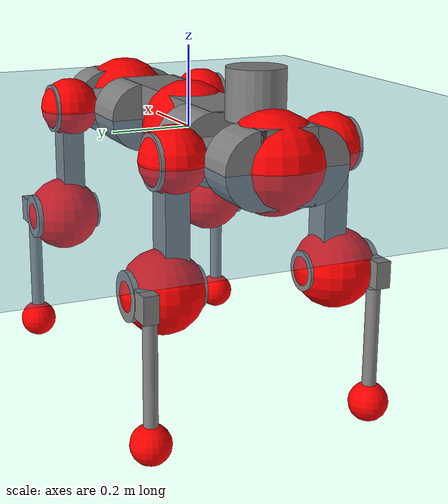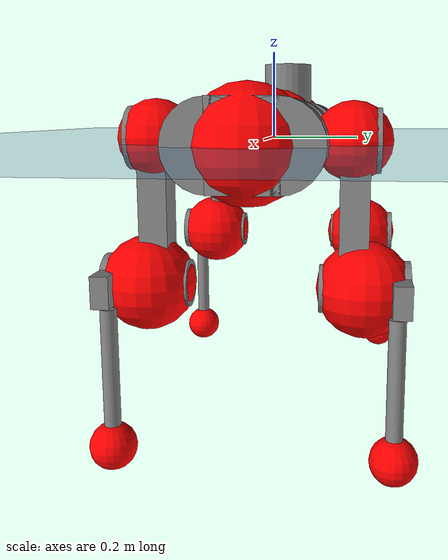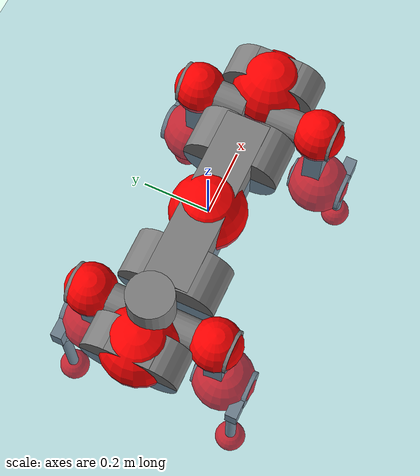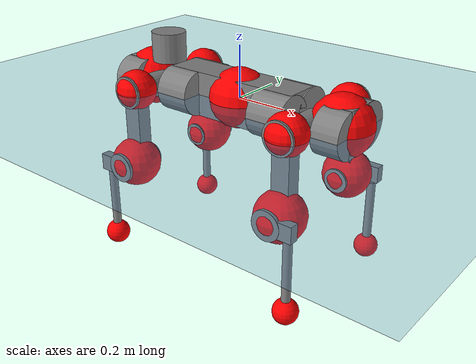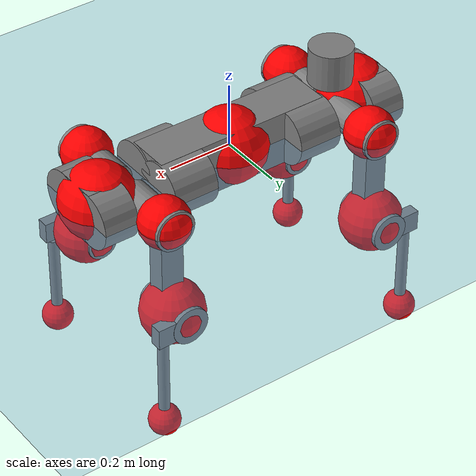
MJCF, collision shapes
<mujoco model="anymal_c">
  <compiler angle="radian" assetdir="assets" balanceinertia="true" inertiafromgeom="false"/>

  <option timestep="0.005" density="1.2" viscosity="2e-05"/>

  <size nkey="1"/>

  <visual>
    <quality shadowsize="8192"/>
    <map shadowclip="0.5"/>
  </visual>

  <default>
    <default class="/">
      <material specular="0" shininess="0.25"/>
      <geom contype="0" conaffinity="0" group="1" solref="-1000 -80"/>
      <site size="0.01 0.005 0.005" group="5"/>
      <general forcelimited="true" forcerange="-80 80" biastype="affine" gainprm="80" biasprm="0 -80 -2"/>
      <default class="anymal_c">
        <joint armature="0.01" damping="0.01" frictionloss="0.1"/>
        <default class="visual">
          <geom type="mesh" group="2"/>
          <default class="visual_zflip"/>
        </default>
        <default class="collision">
          <geom type="cylinder" group="3"/>
          <default class="foot">
            <geom size="0.03 0 0" type="sphere" condim="6" priority="1" friction="0.8 0.02 0.01" solimp="0.015 1 0.03"/>
          </default>
        </default>
      </default>
      <default class="reward_collision_sphere">
        <geom group="5" rgba="1 0 0 1"/>
      </default>
    </default>
  </default>

  <asset>
    <texture type="skybox" colorspace="auto" name="//unnamed_texture_0" builtin="gradient" rgb1="0.95 0.95 0.95" rgb2="0.95 0.95 0.95" width="100" height="600"/>
    <texture type="2d" colorspace="auto" name="texplane" builtin="checker" rgb1="0.345 0.575 0.748" rgb2="0.345 0.575 0.748" markrgb="1 1 1" width="512" height="512"/>
    <texture type="2d" colorspace="linear" name="base" file="base.png"/>
    <texture type="2d" colorspace="linear" name="top_shell" file="top_shell.png"/>
    <texture type="2d" colorspace="linear" name="bottom_shell" file="bottom_shell.png"/>
    <texture type="2d" colorspace="linear" name="remote" file="remote.png"/>
    <texture type="2d" colorspace="linear" name="hatch" file="hatch.png"/>
    <texture type="2d" colorspace="linear" name="handle" file="handle.png"/>
    <texture type="2d" colorspace="linear" name="face" file="face.png"/>
    <texture type="2d" colorspace="linear" name="battery" file="battery.png"/>
    <texture type="2d" colorspace="linear" name="lidar_cage" file="lidar_cage.png"/>
    <texture type="2d" colorspace="linear" name="depth_camera" file="depth_camera.png"/>
    <texture type="2d" colorspace="linear" name="wide_angle_camera" file="wide_angle_camera.png"/>
    <texture type="2d" colorspace="linear" name="lidar" file="lidar.png"/>
    <texture type="2d" colorspace="linear" name="drive" file="drive.png"/>
    <texture type="2d" colorspace="linear" name="hip_l" file="hip_l.png"/>
    <texture type="2d" colorspace="linear" name="shank_l" file="shank_l.png"/>
    <texture type="2d" colorspace="linear" name="foot" file="foot.png"/>
    <texture type="2d" colorspace="linear" name="thigh" file="thigh.png"/>
    <texture type="2d" colorspace="linear" name="shank_r" file="shank_r.png"/>
    <texture type="2d" colorspace="linear" name="hip_r" file="hip_r.png"/>
    <material name="MatPlane" class="/" texture="texplane" texuniform="true" texrepeat="2 2" specular="0.9" shininess="0.5"/>
    <material name="black_plastic" class="/" rgba="0.007 0.007 0.007 1"/>
    <material name="green" class="/" rgba="0.052 0.178 0.033 1"/>
    <material name="red" class="/" rgba="0.178 0.006 0.005 1"/>
    <material name="yellow" class="/" rgba="0.178 0.119 0.006 1"/>
    <material name="lwl" class="/" rgba="0.8 0.8 0.8 1"/>
    <material name="base" class="/" texture="base"/>
    <material name="top_shell" class="/" texture="top_shell"/>
    <material name="bottom_shell" class="/" texture="bottom_shell"/>
    <material name="hip_l" class="/" texture="hip_l"/>
    <material name="thigh" class="/" texture="thigh"/>
    <material name="shank_l" class="/" texture="shank_l"/>
    <material name="foot" class="/" texture="foot"/>
    <material name="hip_r" class="/" texture="hip_r"/>
    <material name="shank" class="/" texture="shank_r"/>
    <material name="hatch" class="/" texture="hatch"/>
    <material name="remote" class="/" texture="remote"/>
    <material name="handle" class="/" texture="handle"/>
    <material name="face" class="/" texture="face"/>
    <material name="depth_camera" class="/" texture="depth_camera"/>
    <material name="wide_angle_camera" class="/" texture="wide_angle_camera"/>
    <material name="battery" class="/" texture="battery"/>
    <material name="lidar_cage" class="/" texture="lidar_cage"/>
    <material name="lidar" class="/" texture="lidar"/>
    <material name="drive" class="/" texture="drive"/>
    <mesh name="base_0" class="/" file="base_0.obj"/>
    <mesh name="base_1" class="/" file="base_1.obj"/>
    <mesh name="base_2" class="/" file="base_2.obj"/>
    <mesh name="base_3" class="/" file="base_3.obj"/>
    <mesh name="base_4" class="/" file="base_4.obj"/>
    <mesh name="base_5" class="/" file="base_5.obj"/>
    <mesh name="top_shell" class="/" file="top_shell.obj"/>
    <mesh name="bottom_shell" class="/" file="bottom_shell.obj"/>
    <mesh name="remote" class="/" file="remote.obj"/>
    <mesh name="handle" class="/" file="handle.obj"/>
    <mesh name="face" class="/" file="face.obj"/>
    <mesh name="wide_angle_camera" class="/" file="wide_angle_camera.obj"/>
    <mesh name="depth_camera" class="/" file="depth_camera.obj"/>
    <mesh name="battery" class="/" file="battery.obj"/>
    <mesh name="lidar_cage" class="/" file="lidar_cage.obj"/>
    <mesh name="lidar" class="/" file="lidar.obj"/>
    <mesh name="drive" class="/" file="drive.obj"/>
    <mesh name="hip_l" class="/" file="hip_l.obj"/>
    <mesh name="thigh" class="/" file="thigh.obj"/>
    <mesh name="shank_l" class="/" file="shank_l.obj"/>
    <mesh name="foot" class="/" file="foot.obj"/>
    <mesh name="hip_r" class="/" file="hip_r.obj"/>
    <mesh name="hatch" class="/" file="hatch.obj"/>
    <mesh name="shank_r" class="/" file="shank_r.obj"/>
  </asset>

  <worldbody>
    <geom name="floor" class="/" size="100 100 0.125" type="plane" group="0" material="MatPlane"/>
    <light name="toplight_shadow" class="/" pos="0 0 5" dir="0.0990148 0.0990148 -0.990148" type="directional" ambient="0.04 0.04 0.04" diffuse="0.55 0.55 0.55" specular="0.12 0.12 0.12"/>
    <light name="toplight_fill" class="/" pos="0 0 5" dir="0.0990148 0.0990148 -0.990148" type="directional" castshadow="false" ambient="0.04 0.04 0.04" diffuse="0.3 0.3 0.3" specular="0.08 0.08 0.08"/>
    <body name="trunk" childclass="anymal_c" pos="-0.000355191 0.000385809 0.000764768" quat="1 -5.74346e-05 2.92909e-05 -2.18639e-05">
      <inertial pos="0.00291261 -0.000720256 0.0502067" quat="0.503697 0.497425 0.497162 0.501684" mass="16.8652" diaginertia="0.601627 0.315322 0.248821"/>
      <joint name="//unnamed_joint_0" type="free" armature="0" damping="0" frictionloss="0"/>
      <geom name="//unnamed_geom_1" class="visual" material="green" mesh="base_0"/>
      <geom name="//unnamed_geom_2" class="visual" material="yellow" mesh="base_1"/>
      <geom name="//unnamed_geom_3" class="visual" material="red" mesh="base_2"/>
      <geom name="//unnamed_geom_4" class="visual" material="black_plastic" mesh="base_3"/>
      <geom name="//unnamed_geom_5" class="visual" material="lwl" mesh="base_4"/>
      <geom name="//unnamed_geom_6" class="visual" material="base" mesh="base_5"/>
      <geom name="trunk_1" class="collision" size="0.277678 0.0670258 0.086176" type="box"/>
      <geom name="trunk_2" class="collision" size="0.086176 0.0694196" pos="0.21357 0.0608802 0" quat="0.707107 0 0.707107 0"/>
      <geom name="trunk_3" class="collision" size="0.086176 0.0694196" pos="-0.21357 0.0608802 0" quat="0.707107 0 0.707107 0"/>
      <geom name="trunk_4" class="collision" size="0.086176 0.0694196" pos="0.21357 -0.0608802 0" quat="0.707107 0 0.707107 0"/>
      <geom name="trunk_5" class="collision" size="0.086176 0.0694196" pos="-0.21357 -0.0608802 0" quat="0.707107 0 0.707107 0"/>
      <geom name="//unnamed_geom_12" class="visual" material="top_shell" mesh="top_shell"/>
      <geom name="//unnamed_geom_13" class="visual" material="bottom_shell" mesh="bottom_shell"/>
      <geom name="//unnamed_geom_14" class="visual" material="remote" mesh="remote"/>
      <geom name="//unnamed_geom_15" class="visual" material="handle" mesh="handle"/>
      <geom name="//unnamed_geom_16" class="visual" pos="0.40701 0 0" quat="1 0 0 0" material="face" mesh="face"/>
      <geom name="trunk_6" class="collision" size="0.0526631 0.0670258 0.086176" pos="0.461016 0 0" type="box"/>
      <geom name="//unnamed_geom_18" class="collision" size="0.086176 0.0526631" pos="0.461016 0.0608802 0" quat="0.707107 0 0.707107 0"/>
      <geom name="//unnamed_geom_19" class="collision" size="0.086176 0.0526631" pos="0.461016 -0.0608802 0" quat="0.707107 0 0.707107 0"/>
      <geom name="//unnamed_geom_20" class="visual" pos="0.45331 0 -0.030106" quat="0.965926 0 0.258819 0" material="depth_camera" mesh="depth_camera"/>
      <geom name="//unnamed_geom_21" class="visual" pos="0.50373 0 0.0152827" material="wide_angle_camera" mesh="wide_angle_camera"/>
      <geom name="//unnamed_geom_22" class="visual_zflip" pos="-0.40701 0 0" quat="0 0 0 1" material="face" mesh="face"/>
      <geom name="trunk_7" class="collision" size="0.0526631 0.0670258 0.086176" pos="-0.461016 0 0" quat="0 0 0 1" type="box"/>
      <geom name="//unnamed_geom_24" class="collision" size="0.086176 0.0526631" pos="-0.461016 -0.0608802 0" quat="0 -0.707107 0 0.707107"/>
      <geom name="//unnamed_geom_25" class="collision" size="0.086176 0.0526631" pos="-0.461016 0.0608802 0" quat="0 -0.707107 0 0.707107"/>
      <geom name="//unnamed_geom_26" class="visual" pos="-0.45331 0 -0.030106" quat="0 -0.258819 0 0.965926" material="depth_camera" mesh="depth_camera"/>
      <geom name="//unnamed_geom_27" class="visual_zflip" pos="-0.50373 0 0.0152827" quat="0 0 0 1" material="wide_angle_camera" mesh="wide_angle_camera"/>
      <geom name="//unnamed_geom_28" class="visual" material="battery" mesh="battery"/>
      <geom name="//unnamed_geom_29" class="visual" pos="0 0.0650277 0.0293607" quat="0.683013 -0.183013 0.183013 0.683013" material="depth_camera" mesh="depth_camera"/>
      <geom name="//unnamed_geom_30" class="visual" pos="0 -0.0650277 0.0293607" quat="0.683013 0.183013 0.183013 -0.683013" material="depth_camera" mesh="depth_camera"/>
      <geom name="//unnamed_geom_31" class="visual" pos="-0.357423 0 0.0750353" quat="1 0 0 0" material="lidar_cage" mesh="lidar_cage"/>
      <geom name="trunk_8" class="collision" size="0.0670258 0.0574507" pos="-0.357423 0 0.136289"/>
      <geom name="//unnamed_geom_33" class="visual" pos="-0.357423 -4.40856e-05 0.14517" quat="0.707107 0 0 -0.707107" material="lidar" mesh="lidar"/>
      <geom name="//unnamed_geom_34" class="visual" pos="0.294481 0.0905042 -2.60772e-09" quat="0.258819 0.965926 0 0" material="drive" mesh="drive"/>
      <geom name="//unnamed_geom_35" class="visual" pos="0.294481 -0.0905042 2.60772e-09" quat="0.258819 -0.965926 0 0" material="drive" mesh="drive"/>
      <geom name="//unnamed_geom_36" class="visual" pos="-0.294481 0.0905042 2.60772e-09" quat="0 0 0.965926 -0.258819" material="drive" mesh="drive"/>
      <geom name="//unnamed_geom_37" class="visual" pos="-0.294481 -0.0905042 -2.60772e-09" quat="0 0 -0.965926 -0.258819" material="drive" mesh="drive"/>
      <geom name="//unnamed_geom_38" class="visual" pos="0.113904 0 0.0745248" quat="1 0 0 0" material="hatch" mesh="hatch"/>
      <geom name="//unnamed_geom_39" class="reward_collision_sphere" size="0.114901"/>
      <geom name="//unnamed_geom_40" class="reward_collision_sphere" size="0.114901" pos="0.441869 0 0"/>
      <geom name="//unnamed_geom_41" class="reward_collision_sphere" size="0.114901" pos="-0.441869 0 0"/>
      <site name="imu" pos="0.241541 -0.00412833 0.0522313" size="0.00957512"/>
      <camera name="track" pos="0 -1.73943 0" quat="0.707107 0.707107 0 0" mode="trackcom"/>
      <camera name="ego_camera" pos="0.441869 0 -0.0408355" quat="-0.5 -0.5 0.5 0.5"/>
      <body name="LF_HIP" pos="0.294639 0.0903995 0.000625265" quat="0.259677 0.965695 0.00064403 0.00027635">
        <inertial pos="0.0564346 -0.0125772 -0.00767848" quat="-0.126283 0.70916 -0.134366 0.680507" mass="2.49639" diaginertia="0.00546351 0.00251027 0.00369902"/>
        <joint name="LF_HAA" pos="0 0 0" axis="1 0.000376595 -0.000758315" range="-0.684264 0.484902" armature="0.00989697" damping="0.0129104" frictionloss="0.094272"/>
        <geom name="//unnamed_geom_42" class="visual" pos="0 -0.0001534 2.51959e-05" quat="0.258819 -0.965926 0 0" material="hip_l" mesh="hip_l"/>
        <geom name="//unnamed_geom_43" class="visual" pos="0.0588176 -0.0698463 -0.0414439" quat="0.183013 -0.683013 0.683013 0.183013" material="drive" mesh="drive"/>
        <geom name="//unnamed_geom_44" class="collision" size="0.0478756 0.0670258" pos="0.0588176 -0.0104016 -0.00704923" quat="-0.353553 -0.612372 0.612372 -0.353553"/>
        <body name="LF_THIGH" pos="0.0591346 -0.0637484 -0.0412543" quat="0.183006 -0.682969 0.683037 0.183093">
          <inertial pos="0.0306629 -0.00170532 -0.25305" quat="0.993451 -0.00561295 -0.0809859 0.0804069" mass="2.69539" diaginertia="0.0276995 0.015002 0.00464398"/>
          <joint name="LF_HFE" pos="0 0 0" axis="1 0.000213246 -0.000222586" range="-3.14705 3.18121" armature="0.00987481" damping="0" frictionloss="0.0954861"/>
          <geom name="//unnamed_geom_45" class="visual" pos="0.00223261 3.51806e-06 0" quat="0.707107 0 0 -0.707107" material="thigh" mesh="thigh"/>
          <geom name="//unnamed_geom_46" class="collision" size="0.0622383 0.0383005" pos="0.0392772 0 0" quat="0.5 0.5 -0.5 -0.5"/>
          <geom name="//unnamed_geom_47" class="collision" size="0.0359067 0.0287253 0.13531" pos="0.0294579 0 -0.144266" quat="0.707107 0 0 -0.707107" type="box"/>
          <geom name="//unnamed_geom_48" class="visual" pos="0.0984876 0 -0.290953" quat="1 0 0 0" material="drive" mesh="drive"/>
          <geom name="//unnamed_geom_49" class="collision" size="0.0478756 0.0670258" pos="0.0297525 0 -0.290953" quat="0.707107 0 0.707107 0"/>
          <geom name="//unnamed_geom_50" class="reward_collision_sphere" size="0.0766009" pos="0.0245483 0 0"/>
          <body name="LF_SHANK" pos="0.100766 0.00161329 -0.290565" quat="1 2.67473e-05 5.48951e-05 -3.70973e-05">
            <inertial pos="0.00603253 -0.0526877 -0.0822341" quat="0.99296 -0.115756 -0.000708274 -0.0250968" mass="0.525655" diaginertia="0.00926251 0.00459843 0.00123676"/>
            <joint name="LF_KFE" pos="0 0 0" axis="0.999998 -0.000668811 -0.00165291" range="-3.13989 3.10968" armature="0.00946748" damping="0.00945502" frictionloss="0.093366"/>
            <geom name="//unnamed_geom_51" class="visual" pos="0.000728004 0.00388175 0" quat="0.707107 0 0 -0.707107" material="shank_l" mesh="shank_l"/>
            <geom name="LF_kfe_act" class="collision" size="0.0574507 0.0191502" pos="0.0196386 0 0" quat="0.5 0.5 -0.5 -0.5"/>
            <geom name="//unnamed_geom_53" class="collision" size="0.055056 0.032316 0.0181927" pos="0.0196386 -0.0500078 0" quat="0.5 0.5 -0.5 -0.5" type="box"/>
            <geom name="//unnamed_geom_54" class="visual" pos="0.012814 -0.0752407 -0.34503" quat="0.382683 0 0 -0.92388" material="foot" mesh="foot"/>
            <geom name="LF_calf" class="collision" size="0.0167565 0.13525" pos="0.0128142 -0.0764916 -0.172515" quat="0.707107 0 0 -0.707107"/>
            <geom name="LF_foot" class="foot" size="0.0276243" pos="0.0128142 -0.0764916 -0.32206" quat="0.707107 0 0 -0.707107"/>
            <geom name="//unnamed_geom_57" class="reward_collision_sphere" size="0.0957512" pos="-0.0490965 0 0"/>
            <geom name="//unnamed_geom_58" class="reward_collision_sphere" size="0.0478756" pos="0.0128142 -0.0764916 -0.32206"/>
            <site name="LF_foot" class="foot" pos="0.0128142 -0.0764916 -0.32206" quat="0.707107 0 0 -0.707107" size="0.00957512"/>
          </body>
        </body>
      </body>
      <body name="RF_HIP" pos="0.294373 -0.0918975 0.00201024" quat="0.258849 -0.965918 6.78177e-06 -2.76529e-05">
        <inertial pos="0.0563121 0.0137203 -0.0088772" quat="0.140259 0.674081 0.124579 0.714438" mass="2.49474" diaginertia="0.00552587 0.00247641 0.00373952"/>
        <joint name="RF_HAA" pos="0 0 0" axis="0.999999 -0.00137188 0.000254264" range="-0.483633 0.725465" armature="0.00957387" damping="0.0104832" frictionloss="0.0912007"/>
        <geom name="//unnamed_geom_59" class="visual" pos="0 0.000153399 2.51958e-05" quat="0.258819 0.965926 0 0" material="hip_r" mesh="hip_r"/>
        <geom name="//unnamed_geom_60" class="visual" pos="0.0588176 0.0698463 -0.0414439" quat="0.183013 0.683013 0.683013 -0.183013" material="drive" mesh="drive"/>
        <geom name="//unnamed_geom_61" class="collision" size="0.0478756 0.0670258" pos="0.0588176 0.0104016 -0.00704923" quat="-0.353553 0.612372 0.612372 0.353553"/>
        <body name="RF_THIGH" pos="0.0583529 0.0628852 -0.0439205" quat="0.182897 0.683058 0.683045 -0.182841">
          <inertial pos="0.0304067 2.72628e-05 -0.252546" quat="0.992525 -0.0166451 -0.0821006 0.0887516" mass="2.73029" diaginertia="0.0285128 0.0152338 0.00475029"/>
          <joint name="RF_HFE" pos="0 0 0" axis="0.999997 0.000464517 0.0021996" stiffness="0.00472041" range="-3.1806 3.15806" armature="0.0091714" damping="0.00947024" frictionloss="0.0943231"/>
          <geom name="//unnamed_geom_62" class="visual" pos="0.00223261 3.51806e-06 0" quat="0.707107 0 0 -0.707107" material="thigh" mesh="thigh"/>
          <geom name="//unnamed_geom_63" class="collision" size="0.0622383 0.0383005" pos="0.0392772 0 0" quat="0.5 0.5 0.5 0.5"/>
          <geom name="//unnamed_geom_64" class="collision" size="0.0359067 0.0287253 0.13531" pos="0.0294579 0 -0.144266" quat="0.707107 0 0 0.707107" type="box"/>
          <geom name="//unnamed_geom_65" class="visual" pos="0.0984876 0 -0.290953" quat="1 0 0 0" material="drive" mesh="drive"/>
          <geom name="//unnamed_geom_66" class="collision" size="0.0478756 0.0670258" pos="0.0297525 0 -0.290953" quat="0.707107 0 0.707107 0"/>
          <geom name="//unnamed_geom_67" class="reward_collision_sphere" size="0.0766009" pos="0.0245483 0 0"/>
          <body name="RF_SHANK" pos="0.0982594 0.000853663 -0.291076" quat="1 -1.64024e-05 -5.85302e-09 -9.3882e-07">
            <inertial pos="0.00532747 0.0531965 -0.0798269" quat="0.992709 0.117185 -0.00110231 0.0282194" mass="0.496732" diaginertia="0.00889456 0.00458815 0.00117983"/>
            <joint name="RF_KFE" pos="0 0 0" axis="0.999999 -7.31833e-05 0.00140078" range="-3.1241 3.14978" armature="0.00982873" damping="0.00830194" frictionloss="0.0954311"/>
            <geom name="//unnamed_geom_68" class="visual" pos="0.000728 -0.00388175 0" quat="0.707107 0 0 0.707107" material="shank" mesh="shank_r"/>
            <geom name="RF_kfe_act" class="collision" size="0.0574507 0.0191502" pos="0.0196386 0 0" quat="0.5 0.5 0.5 0.5"/>
            <geom name="//unnamed_geom_70" class="collision" size="0.055056 0.032316 0.0181927" pos="0.0196386 0.0500078 0" quat="0.5 0.5 0.5 0.5" type="box"/>
            <geom name="//unnamed_geom_71" class="visual" pos="0.0128144 0.0752407 -0.34503" quat="0.382683 0 0 0.92388" material="foot" mesh="foot"/>
            <geom name="RF_calf" class="collision" size="0.0167565 0.13525" pos="0.0128142 0.0764916 -0.172515" quat="0.707107 0 0 0.707107"/>
            <geom name="RF_foot" class="foot" size="0.0282781" pos="0.0128142 0.0764916 -0.32206" quat="0.707107 0 0 0.707107"/>
            <geom name="//unnamed_geom_74" class="reward_collision_sphere" size="0.0957512" pos="-0.0490965 0 0"/>
            <geom name="//unnamed_geom_75" class="reward_collision_sphere" size="0.0478756" pos="0.0128142 0.0764916 -0.32206"/>
            <site name="RF_foot" class="foot" pos="0.0128142 0.0764916 -0.32206" quat="0.707107 0 0 0.707107" size="0.00957512"/>
          </body>
        </body>
      </body>
      <body name="LH_HIP" pos="-0.2944 0.0914967 -0.00111796" quat="0.000293946 0.000137994 0.965919 -0.258844">
        <inertial pos="0.0555424 0.0125708 -0.0102259" quat="0.137196 0.678923 0.128981 0.709651" mass="2.47699" diaginertia="0.00540571 0.00243016 0.00364673"/>
        <joint name="LH_HAA" pos="0 0 0" axis="0.999999 -0.00137287 0.000748993" stiffness="0.000967573" range="-0.450479 0.756517" armature="0.00950532" damping="0.00982825" frictionloss="0.10368"/>
        <geom name="//unnamed_geom_76" class="visual" pos="0 0.000153399 2.51958e-05" quat="-0.258819 -0.965926 0 0" material="hip_r" mesh="hip_r"/>
        <geom name="//unnamed_geom_77" class="visual" pos="0.0588176 0.0698463 -0.0414439" quat="0.183013 0.683013 0.683013 -0.183013" material="drive" mesh="drive"/>
        <geom name="//unnamed_geom_78" class="collision" size="0.0478756 0.0670258" pos="0.0588176 0.0104016 -0.00704923" quat="-0.353553 0.612372 0.612372 0.353553"/>
        <body name="LH_THIGH" pos="0.0581587 0.0633966 -0.0431171" quat="0.182939 0.683039 0.683027 -0.182932">
          <inertial pos="0.0288153 0.000278636 -0.252862" quat="0.991899 -0.00429246 -0.0827779 0.0962602" mass="2.6602" diaginertia="0.0266168 0.0146467 0.00448348"/>
          <joint name="LH_HFE" pos="0 0 0" axis="0.99996 -0.00891333 -0.000493911" stiffness="0.00164646" range="-3.17532 3.14381" armature="0.00910934" damping="0.00361833" frictionloss="0.0973553"/>
          <geom name="//unnamed_geom_79" class="visual" pos="0.00223261 3.51806e-06 0" quat="0.707107 0 0 -0.707107" material="thigh" mesh="thigh"/>
          <geom name="//unnamed_geom_80" class="collision" size="0.0622383 0.0383005" pos="0.0392772 0 0" quat="0.5 0.5 -0.5 -0.5"/>
          <geom name="//unnamed_geom_81" class="collision" size="0.0359067 0.0287253 0.13531" pos="0.0294579 0 -0.144266" quat="0.707107 0 0 -0.707107" type="box"/>
          <geom name="//unnamed_geom_82" class="visual" pos="0.0984876 0 -0.290953" quat="1 0 0 0" material="drive" mesh="drive"/>
          <geom name="//unnamed_geom_83" class="collision" size="0.0478756 0.0670258" pos="0.0297525 0 -0.290953" quat="0.707107 0 0.707107 0"/>
          <geom name="//unnamed_geom_84" class="reward_collision_sphere" size="0.0766009" pos="0.0245483 0 0"/>
          <body name="LH_SHANK" pos="0.0988494 -0.0015481 -0.291994" quat="1 -0.000336688 -2.72323e-05 -0.000284979">
            <inertial pos="0.00485715 0.0534575 -0.0823021" quat="0.993416 0.11191 -0.00327273 0.0242753" mass="0.514101" diaginertia="0.00927877 0.00455045 0.00125942"/>
            <joint name="LH_KFE" pos="0 0 0" axis="0.999999 -0.00115519 -0.000364169" range="-3.16159 3.13941" armature="0.00990509" damping="0.0101364" frictionloss="0.0937803"/>
            <geom name="//unnamed_geom_85" class="visual" pos="0.000728 -0.00388175 0" quat="-0.707107 0 0 -0.707107" material="shank" mesh="shank_r"/>
            <geom name="LH_kfe_act" class="collision" size="0.0574507 0.0191502" pos="0.0196386 0 0" quat="0.5 0.5 -0.5 -0.5"/>
            <geom name="//unnamed_geom_87" class="collision" size="0.055056 0.032316 0.0181927" pos="0.0196386 0.0500078 0" quat="0.5 0.5 -0.5 -0.5" type="box"/>
            <geom name="//unnamed_geom_88" class="visual" pos="0.0128144 0.0752407 -0.34503" quat="-0.382683 0 0 -0.92388" material="foot" mesh="foot"/>
            <geom name="LH_calf" class="collision" size="0.0167565 0.13525" pos="0.0128142 0.0764916 -0.172515" quat="0.707107 0 0 -0.707107"/>
            <geom name="LH_foot" class="foot" size="0.031309" pos="0.0128142 0.0764916 -0.32206" quat="0.707107 0 0 -0.707107"/>
            <geom name="//unnamed_geom_91" class="reward_collision_sphere" size="0.0957512" pos="-0.0490965 0 0"/>
            <geom name="//unnamed_geom_92" class="reward_collision_sphere" size="0.0478756" pos="0.0128142 0.0764916 -0.32206"/>
            <site name="LH_foot" class="foot" pos="0.0128142 0.0764916 -0.32206" quat="0.707107 0 0 -0.707107" size="0.00957512"/>
          </body>
        </body>
      </body>
      <body name="RH_HIP" pos="-0.294412 -0.0890276 0.000235811" quat="0.000147864 0.000293477 -0.965808 -0.259259">
        <inertial pos="0.0553249 -0.0118699 -0.00907892" quat="-0.127985 0.709782 -0.135273 0.67936" mass="2.34679" diaginertia="0.0051916 0.0023828 0.00355022"/>
        <joint name="RH_HAA" pos="0 0 0" axis="0.999989 0.001083 0.00464967" stiffness="3.11462e-06" range="-0.741965 0.473156" armature="0.00983609" damping="0.00287723" frictionloss="0.0910213"/>
        <geom name="//unnamed_geom_93" class="visual" pos="0 -0.0001534 2.51959e-05" quat="-0.258819 0.965926 0 0" material="hip_l" mesh="hip_l"/>
        <geom name="//unnamed_geom_94" class="visual" pos="0.0588176 -0.0698463 -0.0414439" quat="-0.183013 0.683013 -0.683013 -0.183013" material="drive" mesh="drive"/>
        <geom name="//unnamed_geom_95" class="collision" size="0.0478756 0.0670258" pos="0.0588176 -0.0104016 -0.00704923" quat="0.353553 0.612372 -0.612372 0.353553"/>
        <body name="RH_THIGH" pos="0.0584614 -0.0627205 -0.0411338" quat="-0.182999 0.683055 -0.682982 -0.182982">
          <inertial pos="0.0308278 0.000265777 -0.250648" quat="0.9932 -0.00463725 -0.080778 0.0837126" mass="2.62372" diaginertia="0.0269232 0.0145743 0.00463443"/>
          <joint name="RH_HFE" pos="0 0 0" axis="0.999978 -0.000627475 0.0065719" range="-3.17819 3.17759" armature="0.00945657" damping="0.00696299" frictionloss="0.0903687"/>
          <geom name="//unnamed_geom_96" class="visual" pos="0.00223261 3.51806e-06 0" quat="0.707107 0 0 -0.707107" material="thigh" mesh="thigh"/>
          <geom name="//unnamed_geom_97" class="collision" size="0.0622383 0.0383005" pos="0.0392772 0 0" quat="0.5 0.5 0.5 0.5"/>
          <geom name="//unnamed_geom_98" class="collision" size="0.0359067 0.0287253 0.13531" pos="0.0294579 0 -0.144266" quat="0.707107 0 0 0.707107" type="box"/>
          <geom name="//unnamed_geom_99" class="visual" pos="0.0984876 0 -0.290953" quat="1 0 0 0" material="drive" mesh="drive"/>
          <geom name="//unnamed_geom_100" class="collision" size="0.0478756 0.0670258" pos="0.0297525 0 -0.290953" quat="0.707107 0 0.707107 0"/>
          <geom name="//unnamed_geom_101" class="reward_collision_sphere" size="0.0766009" pos="0.0245483 0 0"/>
          <body name="RH_SHANK" pos="0.0998572 1.3265e-05 -0.291281" quat="1 1.46186e-05 -1.03805e-05 -7.13723e-05">
            <inertial pos="0.00446136 -0.0532337 -0.0826136" quat="0.992817 -0.116613 -0.000481887 -0.0267468" mass="0.512049" diaginertia="0.00929393 0.00456381 0.00124495"/>
            <joint name="RH_KFE" pos="0 0 0" axis="0.999955 -0.00156646 0.00934121" range="-3.12735 3.12701" armature="0.00996241" damping="0" frictionloss="0.0973418"/>
            <geom name="//unnamed_geom_102" class="visual" pos="0.000728004 0.00388175 0" quat="0.707107 0 0 -0.707107" material="shank_l" mesh="shank_l"/>
            <geom name="RH_kfe_act" class="collision" size="0.0574507 0.0191502" pos="0.0196386 0 0" quat="0.5 0.5 0.5 0.5"/>
            <geom name="//unnamed_geom_104" class="collision" size="0.055056 0.032316 0.0181927" pos="0.0196386 -0.0500078 0" quat="0.5 0.5 0.5 0.5" type="box"/>
            <geom name="//unnamed_geom_105" class="visual" pos="0.012814 -0.0752407 -0.34503" quat="0.382683 0 0 -0.92388" material="foot" mesh="foot"/>
            <geom name="RH_calf" class="collision" size="0.0167565 0.13525" pos="0.0128142 -0.0764916 -0.172515" quat="0.707107 0 0 0.707107"/>
            <geom name="RH_foot" class="foot" size="0.0295662" pos="0.0128142 -0.0764916 -0.32206" quat="0.707107 0 0 0.707107"/>
            <geom name="//unnamed_geom_108" class="reward_collision_sphere" size="0.0957512" pos="-0.0490965 0 0"/>
            <geom name="//unnamed_geom_109" class="reward_collision_sphere" size="0.0478756" pos="0.0128142 -0.0764916 -0.32206"/>
            <site name="RH_foot" class="foot" pos="0.0128142 -0.0764916 -0.32206" quat="0.707107 0 0 0.707107" size="0.00957512"/>
          </body>
        </body>
      </body>
    </body>
  </worldbody>

  <contact>
    <pair class="/" geom1="floor" geom2="LF_foot" name="//unnamed_contact_0"/>
    <pair class="/" geom1="floor" geom2="RF_foot" name="//unnamed_contact_1"/>
    <pair class="/" geom1="floor" geom2="LH_foot" name="//unnamed_contact_2"/>
    <pair class="/" geom1="floor" geom2="RH_foot" name="//unnamed_contact_3"/>
  </contact>

  <actuator>
    <general name="LF_HAA" class="/" joint="LF_HAA" forcerange="-75.4389 75.4389" gainprm="78.3481" biasprm="0 -78.3481 -2.00548"/>
    <general name="LF_HFE" class="/" joint="LF_HFE" forcerange="-80.795 80.795" gainprm="78.3481" biasprm="0 -78.3481 -2.00548"/>
    <general name="LF_KFE" class="/" joint="LF_KFE" forcerange="-72.6685 72.6685" gainprm="78.3481" biasprm="0 -78.3481 -2.00548"/>
    <general name="RF_HAA" class="/" joint="RF_HAA" forcerange="-78.9009 78.9009" gainprm="78.3481" biasprm="0 -78.3481 -2.00548"/>
    <general name="RF_HFE" class="/" joint="RF_HFE" forcerange="-77.9893 77.9893" gainprm="78.3481" biasprm="0 -78.3481 -2.00548"/>
    <general name="RF_KFE" class="/" joint="RF_KFE" forcerange="-83.4616 83.4616" gainprm="78.3481" biasprm="0 -78.3481 -2.00548"/>
    <general name="LH_HAA" class="/" joint="LH_HAA" forcerange="-82.4655 82.4655" gainprm="78.3481" biasprm="0 -78.3481 -2.00548"/>
    <general name="LH_HFE" class="/" joint="LH_HFE" forcerange="-75.1671 75.1671" gainprm="78.3481" biasprm="0 -78.3481 -2.00548"/>
    <general name="LH_KFE" class="/" joint="LH_KFE" forcerange="-79.1836 79.1836" gainprm="78.3481" biasprm="0 -78.3481 -2.00548"/>
    <general name="RH_HAA" class="/" joint="RH_HAA" forcerange="-76.3612 76.3612" gainprm="78.3481" biasprm="0 -78.3481 -2.00548"/>
    <general name="RH_HFE" class="/" joint="RH_HFE" forcerange="-70.7189 70.7189" gainprm="78.3481" biasprm="0 -78.3481 -2.00548"/>
    <general name="RH_KFE" class="/" joint="RH_KFE" forcerange="-73.9598 73.9598" gainprm="78.3481" biasprm="0 -78.3481 -2.00548"/>
  </actuator>

  <sensor>
    <gyro site="imu" name="imu_angular_velocity"/>
    <velocimeter site="imu" name="imu_linear_velocity"/>
    <framelinvel objtype="site" objname="LF_foot" name="LF_foot_global_linear_velocity"/>
    <framelinvel objtype="site" objname="RF_foot" name="RF_foot_global_linear_velocity"/>
    <framelinvel objtype="site" objname="LH_foot" name="LH_foot_global_linear_velocity"/>
    <framelinvel objtype="site" objname="RH_foot" name="RH_foot_global_linear_velocity"/>
  </sensor>

  <keyframe>
    <key name="home" qpos="0 0 0.55 1 0 0 0 0 0.4 -0.8 0 -0.4 0.8 0 -0.4 0.8 0 0.4 -0.8"/>
  </keyframe>
</mujoco>
